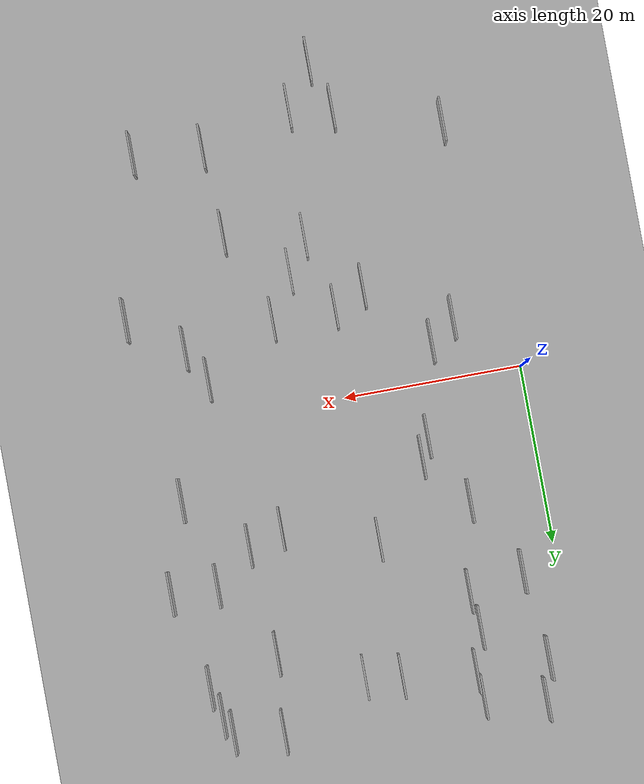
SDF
<?xml version="1.0" encoding="utf-8"?>

<sdf version="1.6">

   <world name="default">

      <gui fullscreen="0">

         <camera name="user_camera">

            <pose>-15 0 4.57585 0 0 0</pose>

            <view_controller>orbit</view_controller>

         </camera>

      </gui>

      <scene>

         <sky>

           <clouds>

             <speed>12</speed>

           </clouds>

         </sky>

         <ambient>0.4 0.4 0.4 1</ambient>

         <background>0.7 0.7 0.7 1</background>

         <shadows>1</shadows>

      </scene>

      <gravity>0 0 -9.8066</gravity>

      <magnetic_field>6e-06 2.3e-05 -4.2e-05</magnetic_field>

      <physics default="0" name="default_physics" type="ode">

         <ode>

            <solver>

               <type>quick</type>

               <iters>10</iters>

               <sor>1.0</sor>

               <use_dynamic_moi_rescaling>0</use_dynamic_moi_rescaling>

            </solver>

            <constraints>

               <cfm>0</cfm>

               <erp>0.2</erp>

               <contact_max_correcting_vel>100</contact_max_correcting_vel>

               <contact_surface_layer>0.001</contact_surface_layer>

            </constraints>

         </ode>

         <max_step_size>0.004</max_step_size>

         <real_time_factor>1</real_time_factor>

         <real_time_update_rate>250</real_time_update_rate>

      </physics>

      <light name="sun" type="directional">

         <cast_shadows>1</cast_shadows>

         <pose>0 0 10 0 0 0</pose>

         <diffuse>0.8 0.8 0.8 1</diffuse>

         <specular>0.2 0.2 0.2 1</specular>

         <attenuation>

            <range>1000</range>

            <constant>0.9</constant>

            <linear>0.01</linear>

            <quadratic>0.001</quadratic>

         </attenuation>

         <direction>-0.5 0.1 -0.9</direction>

      </light>

      <include>

         <name>ground_plane_1</name>

         <uri>model://HANNAS_ground_plane</uri>

         <pose>0 0 0  0 0 0</pose>

      </include>

      <include>

         <name>ground_plane_2</name>

         <uri>model://HANNAS_ground_plane</uri>

         <pose>100 0 0  0 0 0</pose>

      </include>

      <model name="HANNAS_wall_1">

         <static>1</static>

         <pose frame="">3.0240 32.3382 2.5 0.000000 0.000000 1.570796</pose>

         <link name="link">

            <pose frame="">0 0 2.50 0 0 0</pose>

            <collision name="collision">

               <geometry>

                  <box>

                     <size>5.00 0.2 5.00</size>

                  </box>

               </geometry>

               <max_contacts>10</max_contacts>

               <surface>

                  <contact>

                     <ode/>

                  </contact>

                  <bounce/>

                  <friction>

                     <torsional>

                        <ode/>

                     </torsional>

                     <ode/>

                  </friction>

               </surface>

            </collision>

            <visual name="visual">

               <cast_shadows>0</cast_shadows>

               <geometry>

                  <box>

                     <size>5.00 0.2 5.00</size>

                  </box>

               </geometry>

               <material>

                  <script>

                     <uri>model://HANNAS_wall/materials/scripts</uri>

                     <uri>model://HANNAS_wall/materials/textures</uri>

                     <name>vrc/HANNAS_wall</name>

                  </script>

               </material>

            </visual>

            <self_collide>0</self_collide>

            <enable_wind>0</enable_wind>

            <kinematic>0</kinematic>

         </link>

      </model>

      <model name="HANNAS_wall_2">

         <static>1</static>

         <pose frame="">9.8291 27.6861 2.5 0.000000 0.000000 1.570796</pose>

         <link name="link">

            <pose frame="">0 0 2.50 0 0 0</pose>

            <collision name="collision">

               <geometry>

                  <box>

                     <size>5.00 0.2 5.00</size>

                  </box>

               </geometry>

               <max_contacts>10</max_contacts>

               <surface>

                  <contact>

                     <ode/>

                  </contact>

                  <bounce/>

                  <friction>

                     <torsional>

                        <ode/>

                     </torsional>

                     <ode/>

                  </friction>

               </surface>

            </collision>

            <visual name="visual">

               <cast_shadows>0</cast_shadows>

               <geometry>

                  <box>

                     <size>5.00 0.2 5.00</size>

                  </box>

               </geometry>

               <material>

                  <script>

                     <uri>model://HANNAS_wall/materials/scripts</uri>

                     <uri>model://HANNAS_wall/materials/textures</uri>

                     <name>vrc/HANNAS_wall</name>

                  </script>

               </material>

            </visual>

            <self_collide>0</self_collide>

            <enable_wind>0</enable_wind>

            <kinematic>0</kinematic>

         </link>

      </model>

      <model name="HANNAS_wall_3">

         <static>1</static>

         <pose frame="">23.4976 -14.7155 2.5 0.000000 0.000000 1.570796</pose>

         <link name="link">

            <pose frame="">0 0 2.50 0 0 0</pose>

            <collision name="collision">

               <geometry>

                  <box>

                     <size>5.00 0.2 5.00</size>

                  </box>

               </geometry>

               <max_contacts>10</max_contacts>

               <surface>

                  <contact>

                     <ode/>

                  </contact>

                  <bounce/>

                  <friction>

                     <torsional>

                        <ode/>

                     </torsional>

                     <ode/>

                  </friction>

               </surface>

            </collision>

            <visual name="visual">

               <cast_shadows>0</cast_shadows>

               <geometry>

                  <box>

                     <size>5.00 0.2 5.00</size>

                  </box>

               </geometry>

               <material>

                  <script>

                     <uri>model://HANNAS_wall/materials/scripts</uri>

                     <uri>model://HANNAS_wall/materials/textures</uri>

                     <name>vrc/HANNAS_wall</name>

                  </script>

               </material>

            </visual>

            <self_collide>0</self_collide>

            <enable_wind>0</enable_wind>

            <kinematic>0</kinematic>

         </link>

      </model>

      <model name="HANNAS_wall_4">

         <static>1</static>

         <pose frame="">8.4469 13.7940 2.5 0.000000 0.000000 1.570796</pose>

         <link name="link">

            <pose frame="">0 0 2.50 0 0 0</pose>

            <collision name="collision">

               <geometry>

                  <box>

                     <size>5.00 0.2 5.00</size>

                  </box>

               </geometry>

               <max_contacts>10</max_contacts>

               <surface>

                  <contact>

                     <ode/>

                  </contact>

                  <bounce/>

                  <friction>

                     <torsional>

                        <ode/>

                     </torsional>

                     <ode/>

                  </friction>

               </surface>

            </collision>

            <visual name="visual">

               <cast_shadows>0</cast_shadows>

               <geometry>

                  <box>

                     <size>5.00 0.2 5.00</size>

                  </box>

               </geometry>

               <material>

                  <script>

                     <uri>model://HANNAS_wall/materials/scripts</uri>

                     <uri>model://HANNAS_wall/materials/textures</uri>

                     <name>vrc/HANNAS_wall</name>

                  </script>

               </material>

            </visual>

            <self_collide>0</self_collide>

            <enable_wind>0</enable_wind>

            <kinematic>0</kinematic>

         </link>

      </model>

      <model name="HANNAS_wall_5">

         <static>1</static>

         <pose frame="">42.3496 -12.6047 2.5 0.000000 0.000000 1.570796</pose>

         <link name="link">

            <pose frame="">0 0 2.50 0 0 0</pose>

            <collision name="collision">

               <geometry>

                  <box>

                     <size>5.00 0.2 5.00</size>

                  </box>

               </geometry>

               <max_contacts>10</max_contacts>

               <surface>

                  <contact>

                     <ode/>

                  </contact>

                  <bounce/>

                  <friction>

                     <torsional>

                        <ode/>

                     </torsional>

                     <ode/>

                  </friction>

               </surface>

            </collision>

            <visual name="visual">

               <cast_shadows>0</cast_shadows>

               <geometry>

                  <box>

                     <size>5.00 0.2 5.00</size>

                  </box>

               </geometry>

               <material>

                  <script>

                     <uri>model://HANNAS_wall/materials/scripts</uri>

                     <uri>model://HANNAS_wall/materials/textures</uri>

                     <name>vrc/HANNAS_wall</name>

                  </script>

               </material>

            </visual>

            <self_collide>0</self_collide>

            <enable_wind>0</enable_wind>

            <kinematic>0</kinematic>

         </link>

      </model>

      <model name="HANNAS_wall_6">

         <static>1</static>

         <pose frame="">11.7764 5.9705 2.5 0.000000 0.000000 1.570796</pose>

         <link name="link">

            <pose frame="">0 0 2.50 0 0 0</pose>

            <collision name="collision">

               <geometry>

                  <box>

                     <size>5.00 0.2 5.00</size>

                  </box>

               </geometry>

               <max_contacts>10</max_contacts>

               <surface>

                  <contact>

                     <ode/>

                  </contact>

                  <bounce/>

                  <friction>

                     <torsional>

                        <ode/>

                     </torsional>

                     <ode/>

                  </friction>

               </surface>

            </collision>

            <visual name="visual">

               <cast_shadows>0</cast_shadows>

               <geometry>

                  <box>

                     <size>5.00 0.2 5.00</size>

                  </box>

               </geometry>

               <material>

                  <script>

                     <uri>model://HANNAS_wall/materials/scripts</uri>

                     <uri>model://HANNAS_wall/materials/textures</uri>

                     <name>vrc/HANNAS_wall</name>

                  </script>

               </material>

            </visual>

            <self_collide>0</self_collide>

            <enable_wind>0</enable_wind>

            <kinematic>0</kinematic>

         </link>

      </model>

      <model name="HANNAS_wall_7">

         <static>1</static>

         <pose frame="">26.3177 -9.8103 2.5 0.000000 0.000000 1.570796</pose>

         <link name="link">

            <pose frame="">0 0 2.50 0 0 0</pose>

            <collision name="collision">

               <geometry>

                  <box>

                     <size>5.00 0.2 5.00</size>

                  </box>

               </geometry>

               <max_contacts>10</max_contacts>

               <surface>

                  <contact>

                     <ode/>

                  </contact>

                  <bounce/>

                  <friction>

                     <torsional>

                        <ode/>

                     </torsional>

                     <ode/>

                  </friction>

               </surface>

            </collision>

            <visual name="visual">

               <cast_shadows>0</cast_shadows>

               <geometry>

                  <box>

                     <size>5.00 0.2 5.00</size>

                  </box>

               </geometry>

               <material>

                  <script>

                     <uri>model://HANNAS_wall/materials/scripts</uri>

                     <uri>model://HANNAS_wall/materials/textures</uri>

                     <name>vrc/HANNAS_wall</name>

                  </script>

               </material>

            </visual>

            <self_collide>0</self_collide>

            <enable_wind>0</enable_wind>

            <kinematic>0</kinematic>

         </link>

      </model>

      <model name="HANNAS_wall_8">

         <static>1</static>

         <pose frame="">6.7058 -6.4565 2.5 0.000000 0.000000 1.570796</pose>

         <link name="link">

            <pose frame="">0 0 2.50 0 0 0</pose>

            <collision name="collision">

               <geometry>

                  <box>

                     <size>5.00 0.2 5.00</size>

                  </box>

               </geometry>

               <max_contacts>10</max_contacts>

               <surface>

                  <contact>

                     <ode/>

                  </contact>

                  <bounce/>

                  <friction>

                     <torsional>

                        <ode/>

                     </torsional>

                     <ode/>

                  </friction>

               </surface>

            </collision>

            <visual name="visual">

               <cast_shadows>0</cast_shadows>

               <geometry>

                  <box>

                     <size>5.00 0.2 5.00</size>

                  </box>

               </geometry>

               <material>

                  <script>

                     <uri>model://HANNAS_wall/materials/scripts</uri>

                     <uri>model://HANNAS_wall/materials/textures</uri>

                     <name>vrc/HANNAS_wall</name>

                  </script>

               </material>

            </visual>

            <self_collide>0</self_collide>

            <enable_wind>0</enable_wind>

            <kinematic>0</kinematic>

         </link>

      </model>

      <model name="HANNAS_wall_9">

         <static>1</static>

         <pose frame="">30.5753 -29.9207 2.5 0.000000 0.000000 1.570796</pose>

         <link name="link">

            <pose frame="">0 0 2.50 0 0 0</pose>

            <collision name="collision">

               <geometry>

                  <box>

                     <size>5.00 0.2 5.00</size>

                  </box>

               </geometry>

               <max_contacts>10</max_contacts>

               <surface>

                  <contact>

                     <ode/>

                  </contact>

                  <bounce/>

                  <friction>

                     <torsional>

                        <ode/>

                     </torsional>

                     <ode/>

                  </friction>

               </surface>

            </collision>

            <visual name="visual">

               <cast_shadows>0</cast_shadows>

               <geometry>

                  <box>

                     <size>5.00 0.2 5.00</size>

                  </box>

               </geometry>

               <material>

                  <script>

                     <uri>model://HANNAS_wall/materials/scripts</uri>

                     <uri>model://HANNAS_wall/materials/textures</uri>

                     <name>vrc/HANNAS_wall</name>

                  </script>

               </material>

            </visual>

            <self_collide>0</self_collide>

            <enable_wind>0</enable_wind>

            <kinematic>0</kinematic>

         </link>

      </model>

      <model name="HANNAS_wall_10">

         <static>1</static>

         <pose frame="">32.3919 26.5118 2.5 0.000000 0.000000 1.570796</pose>

         <link name="link">

            <pose frame="">0 0 2.50 0 0 0</pose>

            <collision name="collision">

               <geometry>

                  <box>

                     <size>5.00 0.2 5.00</size>

                  </box>

               </geometry>

               <max_contacts>10</max_contacts>

               <surface>

                  <contact>

                     <ode/>

                  </contact>

                  <bounce/>

                  <friction>

                     <torsional>

                        <ode/>

                     </torsional>

                     <ode/>

                  </friction>

               </surface>

            </collision>

            <visual name="visual">

               <cast_shadows>0</cast_shadows>

               <geometry>

                  <box>

                     <size>5.00 0.2 5.00</size>

                  </box>

               </geometry>

               <material>

                  <script>

                     <uri>model://HANNAS_wall/materials/scripts</uri>

                     <uri>model://HANNAS_wall/materials/textures</uri>

                     <name>vrc/HANNAS_wall</name>

                  </script>

               </material>

            </visual>

            <self_collide>0</self_collide>

            <enable_wind>0</enable_wind>

            <kinematic>0</kinematic>

         </link>

      </model>

      <model name="HANNAS_wall_11">

         <static>1</static>

         <pose frame="">39.7655 8.0838 2.5 0.000000 0.000000 1.570796</pose>

         <link name="link">

            <pose frame="">0 0 2.50 0 0 0</pose>

            <collision name="collision">

               <geometry>

                  <box>

                     <size>5.00 0.2 5.00</size>

                  </box>

               </geometry>

               <max_contacts>10</max_contacts>

               <surface>

                  <contact>

                     <ode/>

                  </contact>

                  <bounce/>

                  <friction>

                     <torsional>

                        <ode/>

                     </torsional>

                     <ode/>

                  </friction>

               </surface>

            </collision>

            <visual name="visual">

               <cast_shadows>0</cast_shadows>

               <geometry>

                  <box>

                     <size>5.00 0.2 5.00</size>

                  </box>

               </geometry>

               <material>

                  <script>

                     <uri>model://HANNAS_wall/materials/scripts</uri>

                     <uri>model://HANNAS_wall/materials/textures</uri>

                     <name>vrc/HANNAS_wall</name>

                  </script>

               </material>

            </visual>

            <self_collide>0</self_collide>

            <enable_wind>0</enable_wind>

            <kinematic>0</kinematic>

         </link>

      </model>

      <model name="HANNAS_wall_12">

         <static>1</static>

         <pose frame="">37.5362 18.0105 2.5 0.000000 0.000000 1.570796</pose>

         <link name="link">

            <pose frame="">0 0 2.50 0 0 0</pose>

            <collision name="collision">

               <geometry>

                  <box>

                     <size>5.00 0.2 5.00</size>

                  </box>

               </geometry>

               <max_contacts>10</max_contacts>

               <surface>

                  <contact>

                     <ode/>

                  </contact>

                  <bounce/>

                  <friction>

                     <torsional>

                        <ode/>

                     </torsional>

                     <ode/>

                  </friction>

               </surface>

            </collision>

            <visual name="visual">

               <cast_shadows>0</cast_shadows>

               <geometry>

                  <box>

                     <size>5.00 0.2 5.00</size>

                  </box>

               </geometry>

               <material>

                  <script>

                     <uri>model://HANNAS_wall/materials/scripts</uri>

                     <uri>model://HANNAS_wall/materials/textures</uri>

                     <name>vrc/HANNAS_wall</name>

                  </script>

               </material>

            </visual>

            <self_collide>0</self_collide>

            <enable_wind>0</enable_wind>

            <kinematic>0</kinematic>

         </link>

      </model>

      <model name="HANNAS_wall_13">

         <static>1</static>

         <pose frame="">33.1508 35.0678 2.5 0.000000 0.000000 1.570796</pose>

         <link name="link">

            <pose frame="">0 0 2.50 0 0 0</pose>

            <collision name="collision">

               <geometry>

                  <box>

                     <size>5.00 0.2 5.00</size>

                  </box>

               </geometry>

               <max_contacts>10</max_contacts>

               <surface>

                  <contact>

                     <ode/>

                  </contact>

                  <bounce/>

                  <friction>

                     <torsional>

                        <ode/>

                     </torsional>

                     <ode/>

                  </friction>

               </surface>

            </collision>

            <visual name="visual">

               <cast_shadows>0</cast_shadows>

               <geometry>

                  <box>

                     <size>5.00 0.2 5.00</size>

                  </box>

               </geometry>

               <material>

                  <script>

                     <uri>model://HANNAS_wall/materials/scripts</uri>

                     <uri>model://HANNAS_wall/materials/textures</uri>

                     <name>vrc/HANNAS_wall</name>

                  </script>

               </material>

            </visual>

            <self_collide>0</self_collide>

            <enable_wind>0</enable_wind>

            <kinematic>0</kinematic>

         </link>

      </model>

      <model name="HANNAS_wall_14">

         <static>1</static>

         <pose frame="">11.1212 32.3318 2.5 0.000000 0.000000 1.570796</pose>

         <link name="link">

            <pose frame="">0 0 2.50 0 0 0</pose>

            <collision name="collision">

               <geometry>

                  <box>

                     <size>5.00 0.2 5.00</size>

                  </box>

               </geometry>

               <max_contacts>10</max_contacts>

               <surface>

                  <contact>

                     <ode/>

                  </contact>

                  <bounce/>

                  <friction>

                     <torsional>

                        <ode/>

                     </torsional>

                     <ode/>

                  </friction>

               </surface>

            </collision>

            <visual name="visual">

               <cast_shadows>0</cast_shadows>

               <geometry>

                  <box>

                     <size>5.00 0.2 5.00</size>

                  </box>

               </geometry>

               <material>

                  <script>

                     <uri>model://HANNAS_wall/materials/scripts</uri>

                     <uri>model://HANNAS_wall/materials/textures</uri>

                     <name>vrc/HANNAS_wall</name>

                  </script>

               </material>

            </visual>

            <self_collide>0</self_collide>

            <enable_wind>0</enable_wind>

            <kinematic>0</kinematic>

         </link>

      </model>

      <model name="HANNAS_wall_15">

         <static>1</static>

         <pose frame="">42.7084 17.9801 2.5 0.000000 0.000000 1.570796</pose>

         <link name="link">

            <pose frame="">0 0 2.50 0 0 0</pose>

            <collision name="collision">

               <geometry>

                  <box>

                     <size>5.00 0.2 5.00</size>

                  </box>

               </geometry>

               <max_contacts>10</max_contacts>

               <surface>

                  <contact>

                     <ode/>

                  </contact>

                  <bounce/>

                  <friction>

                     <torsional>

                        <ode/>

                     </torsional>

                     <ode/>

                  </friction>

               </surface>

            </collision>

            <visual name="visual">

               <cast_shadows>0</cast_shadows>

               <geometry>

                  <box>

                     <size>5.00 0.2 5.00</size>

                  </box>

               </geometry>

               <material>

                  <script>

                     <uri>model://HANNAS_wall/materials/scripts</uri>

                     <uri>model://HANNAS_wall/materials/textures</uri>

                     <name>vrc/HANNAS_wall</name>

                  </script>

               </material>

            </visual>

            <self_collide>0</self_collide>

            <enable_wind>0</enable_wind>

            <kinematic>0</kinematic>

         </link>

      </model>

      <model name="HANNAS_wall_16">

         <static>1</static>

         <pose frame="">19.0860 16.1743 2.5 0.000000 0.000000 1.570796</pose>

         <link name="link">

            <pose frame="">0 0 2.50 0 0 0</pose>

            <collision name="collision">

               <geometry>

                  <box>

                     <size>5.00 0.2 5.00</size>

                  </box>

               </geometry>

               <max_contacts>10</max_contacts>

               <surface>

                  <contact>

                     <ode/>

                  </contact>

                  <bounce/>

                  <friction>

                     <torsional>

                        <ode/>

                     </torsional>

                     <ode/>

                  </friction>

               </surface>

            </collision>

            <visual name="visual">

               <cast_shadows>0</cast_shadows>

               <geometry>

                  <box>

                     <size>5.00 0.2 5.00</size>

                  </box>

               </geometry>

               <material>

                  <script>

                     <uri>model://HANNAS_wall/materials/scripts</uri>

                     <uri>model://HANNAS_wall/materials/textures</uri>

                     <name>vrc/HANNAS_wall</name>

                  </script>

               </material>

            </visual>

            <self_collide>0</self_collide>

            <enable_wind>0</enable_wind>

            <kinematic>0</kinematic>

         </link>

      </model>

      <model name="HANNAS_wall_17">

         <static>1</static>

         <pose frame="">10.8836 35.2054 2.5 0.000000 0.000000 1.570796</pose>

         <link name="link">

            <pose frame="">0 0 2.50 0 0 0</pose>

            <collision name="collision">

               <geometry>

                  <box>

                     <size>5.00 0.2 5.00</size>

                  </box>

               </geometry>

               <max_contacts>10</max_contacts>

               <surface>

                  <contact>

                     <ode/>

                  </contact>

                  <bounce/>

                  <friction>

                     <torsional>

                        <ode/>

                     </torsional>

                     <ode/>

                  </friction>

               </surface>

            </collision>

            <visual name="visual">

               <cast_shadows>0</cast_shadows>

               <geometry>

                  <box>

                     <size>5.00 0.2 5.00</size>

                  </box>

               </geometry>

               <material>

                  <script>

                     <uri>model://HANNAS_wall/materials/scripts</uri>

                     <uri>model://HANNAS_wall/materials/textures</uri>

                     <name>vrc/HANNAS_wall</name>

                  </script>

               </material>

            </visual>

            <self_collide>0</self_collide>

            <enable_wind>0</enable_wind>

            <kinematic>0</kinematic>

         </link>

      </model>

      <model name="HANNAS_wall_18">

         <static>1</static>

         <pose frame="">12.7878 8.1145 2.5 0.000000 0.000000 1.570796</pose>

         <link name="link">

            <pose frame="">0 0 2.50 0 0 0</pose>

            <collision name="collision">

               <geometry>

                  <box>

                     <size>5.00 0.2 5.00</size>

                  </box>

               </geometry>

               <max_contacts>10</max_contacts>

               <surface>

                  <contact>

                     <ode/>

                  </contact>

                  <bounce/>

                  <friction>

                     <torsional>

                        <ode/>

                     </torsional>

                     <ode/>

                  </friction>

               </surface>

            </collision>

            <visual name="visual">

               <cast_shadows>0</cast_shadows>

               <geometry>

                  <box>

                     <size>5.00 0.2 5.00</size>

                  </box>

               </geometry>

               <material>

                  <script>

                     <uri>model://HANNAS_wall/materials/scripts</uri>

                     <uri>model://HANNAS_wall/materials/textures</uri>

                     <name>vrc/HANNAS_wall</name>

                  </script>

               </material>

            </visual>

            <self_collide>0</self_collide>

            <enable_wind>0</enable_wind>

            <kinematic>0</kinematic>

         </link>

      </model>

      <model name="HANNAS_wall_19">

         <static>1</static>

         <pose frame="">4.1450 22.4638 2.5 0.000000 0.000000 1.570796</pose>

         <link name="link">

            <pose frame="">0 0 2.50 0 0 0</pose>

            <collision name="collision">

               <geometry>

                  <box>

                     <size>5.00 0.2 5.00</size>

                  </box>

               </geometry>

               <max_contacts>10</max_contacts>

               <surface>

                  <contact>

                     <ode/>

                  </contact>

                  <bounce/>

                  <friction>

                     <torsional>

                        <ode/>

                     </torsional>

                     <ode/>

                  </friction>

               </surface>

            </collision>

            <visual name="visual">

               <cast_shadows>0</cast_shadows>

               <geometry>

                  <box>

                     <size>5.00 0.2 5.00</size>

                  </box>

               </geometry>

               <material>

                  <script>

                     <uri>model://HANNAS_wall/materials/scripts</uri>

                     <uri>model://HANNAS_wall/materials/textures</uri>

                     <name>vrc/HANNAS_wall</name>

                  </script>

               </material>

            </visual>

            <self_collide>0</self_collide>

            <enable_wind>0</enable_wind>

            <kinematic>0</kinematic>

         </link>

      </model>

      <model name="HANNAS_wall_20">

         <static>1</static>

         <pose frame="">15.8582 -11.6536 2.5 0.000000 0.000000 1.570796</pose>

         <link name="link">

            <pose frame="">0 0 2.50 0 0 0</pose>

            <collision name="collision">

               <geometry>

                  <box>

                     <size>5.00 0.2 5.00</size>

                  </box>

               </geometry>

               <max_contacts>10</max_contacts>

               <surface>

                  <contact>

                     <ode/>

                  </contact>

                  <bounce/>

                  <friction>

                     <torsional>

                        <ode/>

                     </torsional>

                     <ode/>

                  </friction>

               </surface>

            </collision>

            <visual name="visual">

               <cast_shadows>0</cast_shadows>

               <geometry>

                  <box>

                     <size>5.00 0.2 5.00</size>

                  </box>

               </geometry>

               <material>

                  <script>

                     <uri>model://HANNAS_wall/materials/scripts</uri>

                     <uri>model://HANNAS_wall/materials/textures</uri>

                     <name>vrc/HANNAS_wall</name>

                  </script>

               </material>

            </visual>

            <self_collide>0</self_collide>

            <enable_wind>0</enable_wind>

            <kinematic>0</kinematic>

         </link>

      </model>

      <model name="HANNAS_wall_21">

         <static>1</static>

         <pose frame="">9.4870 -4.2810 2.5 0.000000 0.000000 1.570796</pose>

         <link name="link">

            <pose frame="">0 0 2.50 0 0 0</pose>

            <collision name="collision">

               <geometry>

                  <box>

                     <size>5.00 0.2 5.00</size>

                  </box>

               </geometry>

               <max_contacts>10</max_contacts>

               <surface>

                  <contact>

                     <ode/>

                  </contact>

                  <bounce/>

                  <friction>

                     <torsional>

                        <ode/>

                     </torsional>

                     <ode/>

                  </friction>

               </surface>

            </collision>

            <visual name="visual">

               <cast_shadows>0</cast_shadows>

               <geometry>

                  <box>

                     <size>5.00 0.2 5.00</size>

                  </box>

               </geometry>

               <material>

                  <script>

                     <uri>model://HANNAS_wall/materials/scripts</uri>

                     <uri>model://HANNAS_wall/materials/textures</uri>

                     <name>vrc/HANNAS_wall</name>

                  </script>

               </material>

            </visual>

            <self_collide>0</self_collide>

            <enable_wind>0</enable_wind>

            <kinematic>0</kinematic>

         </link>

      </model>

      <model name="HANNAS_wall_22">

         <static>1</static>

         <pose frame="">39.5020 32.1715 2.5 0.000000 0.000000 1.570796</pose>

         <link name="link">

            <pose frame="">0 0 2.50 0 0 0</pose>

            <collision name="collision">

               <geometry>

                  <box>

                     <size>5.00 0.2 5.00</size>

                  </box>

               </geometry>

               <max_contacts>10</max_contacts>

               <surface>

                  <contact>

                     <ode/>

                  </contact>

                  <bounce/>

                  <friction>

                     <torsional>

                        <ode/>

                     </torsional>

                     <ode/>

                  </friction>

               </surface>

            </collision>

            <visual name="visual">

               <cast_shadows>0</cast_shadows>

               <geometry>

                  <box>

                     <size>5.00 0.2 5.00</size>

                  </box>

               </geometry>

               <material>

                  <script>

                     <uri>model://HANNAS_wall/materials/scripts</uri>

                     <uri>model://HANNAS_wall/materials/textures</uri>

                     <name>vrc/HANNAS_wall</name>

                  </script>

               </material>

            </visual>

            <self_collide>0</self_collide>

            <enable_wind>0</enable_wind>

            <kinematic>0</kinematic>

         </link>

      </model>

      <model name="HANNAS_wall_23">

         <static>1</static>

         <pose frame="">21.2196 -18.2539 2.5 0.000000 0.000000 1.570796</pose>

         <link name="link">

            <pose frame="">0 0 2.50 0 0 0</pose>

            <collision name="collision">

               <geometry>

                  <box>

                     <size>5.00 0.2 5.00</size>

                  </box>

               </geometry>

               <max_contacts>10</max_contacts>

               <surface>

                  <contact>

                     <ode/>

                  </contact>

                  <bounce/>

                  <friction>

                     <torsional>

                        <ode/>

                     </torsional>

                     <ode/>

                  </friction>

               </surface>

            </collision>

            <visual name="visual">

               <cast_shadows>0</cast_shadows>

               <geometry>

                  <box>

                     <size>5.00 0.2 5.00</size>

                  </box>

               </geometry>

               <material>

                  <script>

                     <uri>model://HANNAS_wall/materials/scripts</uri>

                     <uri>model://HANNAS_wall/materials/textures</uri>

                     <name>vrc/HANNAS_wall</name>

                  </script>

               </material>

            </visual>

            <self_collide>0</self_collide>

            <enable_wind>0</enable_wind>

            <kinematic>0</kinematic>

         </link>

      </model>

      <model name="HANNAS_wall_24">

         <static>1</static>

         <pose frame="">33.3177 14.2906 2.5 0.000000 0.000000 1.570796</pose>

         <link name="link">

            <pose frame="">0 0 2.50 0 0 0</pose>

            <collision name="collision">

               <geometry>

                  <box>

                     <size>5.00 0.2 5.00</size>

                  </box>

               </geometry>

               <max_contacts>10</max_contacts>

               <surface>

                  <contact>

                     <ode/>

                  </contact>

                  <bounce/>

                  <friction>

                     <torsional>

                        <ode/>

                     </torsional>

                     <ode/>

                  </friction>

               </surface>

            </collision>

            <visual name="visual">

               <cast_shadows>0</cast_shadows>

               <geometry>

                  <box>

                     <size>5.00 0.2 5.00</size>

                  </box>

               </geometry>

               <material>

                  <script>

                     <uri>model://HANNAS_wall/materials/scripts</uri>

                     <uri>model://HANNAS_wall/materials/textures</uri>

                     <name>vrc/HANNAS_wall</name>

                  </script>

               </material>

            </visual>

            <self_collide>0</self_collide>

            <enable_wind>0</enable_wind>

            <kinematic>0</kinematic>

         </link>

      </model>

      <model name="HANNAS_wall_25">

         <static>1</static>

         <pose frame="">36.4399 -8.3549 2.5 0.000000 0.000000 1.570796</pose>

         <link name="link">

            <pose frame="">0 0 2.50 0 0 0</pose>

            <collision name="collision">

               <geometry>

                  <box>

                     <size>5.00 0.2 5.00</size>

                  </box>

               </geometry>

               <max_contacts>10</max_contacts>

               <surface>

                  <contact>

                     <ode/>

                  </contact>

                  <bounce/>

                  <friction>

                     <torsional>

                        <ode/>

                     </torsional>

                     <ode/>

                  </friction>

               </surface>

            </collision>

            <visual name="visual">

               <cast_shadows>0</cast_shadows>

               <geometry>

                  <box>

                     <size>5.00 0.2 5.00</size>

                  </box>

               </geometry>

               <material>

                  <script>

                     <uri>model://HANNAS_wall/materials/scripts</uri>

                     <uri>model://HANNAS_wall/materials/textures</uri>

                     <name>vrc/HANNAS_wall</name>

                  </script>

               </material>

            </visual>

            <self_collide>0</self_collide>

            <enable_wind>0</enable_wind>

            <kinematic>0</kinematic>

         </link>

      </model>

      <model name="HANNAS_wall_26">

         <static>1</static>

         <pose frame="">4.0799 36.7621 2.5 0.000000 0.000000 1.570796</pose>

         <link name="link">

            <pose frame="">0 0 2.50 0 0 0</pose>

            <collision name="collision">

               <geometry>

                  <box>

                     <size>5.00 0.2 5.00</size>

                  </box>

               </geometry>

               <max_contacts>10</max_contacts>

               <surface>

                  <contact>

                     <ode/>

                  </contact>

                  <bounce/>

                  <friction>

                     <torsional>

                        <ode/>

                     </torsional>

                     <ode/>

                  </friction>

               </surface>

            </collision>

            <visual name="visual">

               <cast_shadows>0</cast_shadows>

               <geometry>

                  <box>

                     <size>5.00 0.2 5.00</size>

                  </box>

               </geometry>

               <material>

                  <script>

                     <uri>model://HANNAS_wall/materials/scripts</uri>

                     <uri>model://HANNAS_wall/materials/textures</uri>

                     <name>vrc/HANNAS_wall</name>

                  </script>

               </material>

            </visual>

            <self_collide>0</self_collide>

            <enable_wind>0</enable_wind>

            <kinematic>0</kinematic>

         </link>

      </model>

      <model name="HANNAS_wall_27">

         <static>1</static>

         <pose frame="">23.3341 30.7837 2.5 0.000000 0.000000 1.570796</pose>

         <link name="link">

            <pose frame="">0 0 2.50 0 0 0</pose>

            <collision name="collision">

               <geometry>

                  <box>

                     <size>5.00 0.2 5.00</size>

                  </box>

               </geometry>

               <max_contacts>10</max_contacts>

               <surface>

                  <contact>

                     <ode/>

                  </contact>

                  <bounce/>

                  <friction>

                     <torsional>

                        <ode/>

                     </torsional>

                     <ode/>

                  </friction>

               </surface>

            </collision>

            <visual name="visual">

               <cast_shadows>0</cast_shadows>

               <geometry>

                  <box>

                     <size>5.00 0.2 5.00</size>

                  </box>

               </geometry>

               <material>

                  <script>

                     <uri>model://HANNAS_wall/materials/scripts</uri>

                     <uri>model://HANNAS_wall/materials/textures</uri>

                     <name>vrc/HANNAS_wall</name>

                  </script>

               </material>

            </visual>

            <self_collide>0</self_collide>

            <enable_wind>0</enable_wind>

            <kinematic>0</kinematic>

         </link>

      </model>

      <model name="HANNAS_wall_28">

         <static>1</static>

         <pose frame="">40.3029 28.9123 2.5 0.000000 0.000000 1.570796</pose>

         <link name="link">

            <pose frame="">0 0 2.50 0 0 0</pose>

            <collision name="collision">

               <geometry>

                  <box>

                     <size>5.00 0.2 5.00</size>

                  </box>

               </geometry>

               <max_contacts>10</max_contacts>

               <surface>

                  <contact>

                     <ode/>

                  </contact>

                  <bounce/>

                  <friction>

                     <torsional>

                        <ode/>

                     </torsional>

                     <ode/>

                  </friction>

               </surface>

            </collision>

            <visual name="visual">

               <cast_shadows>0</cast_shadows>

               <geometry>

                  <box>

                     <size>5.00 0.2 5.00</size>

                  </box>

               </geometry>

               <material>

                  <script>

                     <uri>model://HANNAS_wall/materials/scripts</uri>

                     <uri>model://HANNAS_wall/materials/textures</uri>

                     <name>vrc/HANNAS_wall</name>

                  </script>

               </material>

            </visual>

            <self_collide>0</self_collide>

            <enable_wind>0</enable_wind>

            <kinematic>0</kinematic>

         </link>

      </model>

      <model name="HANNAS_wall_29">

         <static>1</static>

         <pose frame="">19.2934 -9.9278 2.5 0.000000 0.000000 1.570796</pose>

         <link name="link">

            <pose frame="">0 0 2.50 0 0 0</pose>

            <collision name="collision">

               <geometry>

                  <box>

                     <size>5.00 0.2 5.00</size>

                  </box>

               </geometry>

               <max_contacts>10</max_contacts>

               <surface>

                  <contact>

                     <ode/>

                  </contact>

                  <bounce/>

                  <friction>

                     <torsional>

                        <ode/>

                     </torsional>

                     <ode/>

                  </friction>

               </surface>

            </collision>

            <visual name="visual">

               <cast_shadows>0</cast_shadows>

               <geometry>

                  <box>

                     <size>5.00 0.2 5.00</size>

                  </box>

               </geometry>

               <material>

                  <script>

                     <uri>model://HANNAS_wall/materials/scripts</uri>

                     <uri>model://HANNAS_wall/materials/textures</uri>

                     <name>vrc/HANNAS_wall</name>

                  </script>

               </material>

            </visual>

            <self_collide>0</self_collide>

            <enable_wind>0</enable_wind>

            <kinematic>0</kinematic>

         </link>

      </model>

      <model name="HANNAS_wall_30">

         <static>1</static>

         <pose frame="">29.4686 13.0612 2.5 0.000000 0.000000 1.570796</pose>

         <link name="link">

            <pose frame="">0 0 2.50 0 0 0</pose>

            <collision name="collision">

               <geometry>

                  <box>

                     <size>5.00 0.2 5.00</size>

                  </box>

               </geometry>

               <max_contacts>10</max_contacts>

               <surface>

                  <contact>

                     <ode/>

                  </contact>

                  <bounce/>

                  <friction>

                     <torsional>

                        <ode/>

                     </torsional>

                     <ode/>

                  </friction>

               </surface>

            </collision>

            <visual name="visual">

               <cast_shadows>0</cast_shadows>

               <geometry>

                  <box>

                     <size>5.00 0.2 5.00</size>

                  </box>

               </geometry>

               <material>

                  <script>

                     <uri>model://HANNAS_wall/materials/scripts</uri>

                     <uri>model://HANNAS_wall/materials/textures</uri>

                     <name>vrc/HANNAS_wall</name>

                  </script>

               </material>

            </visual>

            <self_collide>0</self_collide>

            <enable_wind>0</enable_wind>

            <kinematic>0</kinematic>

         </link>

      </model>

      <model name="HANNAS_wall_31">

         <static>1</static>

         <pose frame="">15.6518 -31.7226 2.5 0.000000 0.000000 1.570796</pose>

         <link name="link">

            <pose frame="">0 0 2.50 0 0 0</pose>

            <collision name="collision">

               <geometry>

                  <box>

                     <size>5.00 0.2 5.00</size>

                  </box>

               </geometry>

               <max_contacts>10</max_contacts>

               <surface>

                  <contact>

                     <ode/>

                  </contact>

                  <bounce/>

                  <friction>

                     <torsional>

                        <ode/>

                     </torsional>

                     <ode/>

                  </friction>

               </surface>

            </collision>

            <visual name="visual">

               <cast_shadows>0</cast_shadows>

               <geometry>

                  <box>

                     <size>5.00 0.2 5.00</size>

                  </box>

               </geometry>

               <material>

                  <script>

                     <uri>model://HANNAS_wall/materials/scripts</uri>

                     <uri>model://HANNAS_wall/materials/textures</uri>

                     <name>vrc/HANNAS_wall</name>

                  </script>

               </material>

            </visual>

            <self_collide>0</self_collide>

            <enable_wind>0</enable_wind>

            <kinematic>0</kinematic>

         </link>

      </model>

      <model name="HANNAS_wall_32">

         <static>1</static>

         <pose frame="">3.9060 -28.1129 2.5 0.000000 0.000000 1.570796</pose>

         <link name="link">

            <pose frame="">0 0 2.50 0 0 0</pose>

            <collision name="collision">

               <geometry>

                  <box>

                     <size>5.00 0.2 5.00</size>

                  </box>

               </geometry>

               <max_contacts>10</max_contacts>

               <surface>

                  <contact>

                     <ode/>

                  </contact>

                  <bounce/>

                  <friction>

                     <torsional>

                        <ode/>

                     </torsional>

                     <ode/>

                  </friction>

               </surface>

            </collision>

            <visual name="visual">

               <cast_shadows>0</cast_shadows>

               <geometry>

                  <box>

                     <size>5.00 0.2 5.00</size>

                  </box>

               </geometry>

               <material>

                  <script>

                     <uri>model://HANNAS_wall/materials/scripts</uri>

                     <uri>model://HANNAS_wall/materials/textures</uri>

                     <name>vrc/HANNAS_wall</name>

                  </script>

               </material>

            </visual>

            <self_collide>0</self_collide>

            <enable_wind>0</enable_wind>

            <kinematic>0</kinematic>

         </link>

      </model>

      <model name="HANNAS_wall_33">

         <static>1</static>

         <pose frame="">17.3051 -37.2956 2.5 0.000000 0.000000 1.570796</pose>

         <link name="link">

            <pose frame="">0 0 2.50 0 0 0</pose>

            <collision name="collision">

               <geometry>

                  <box>

                     <size>5.00 0.2 5.00</size>

                  </box>

               </geometry>

               <max_contacts>10</max_contacts>

               <surface>

                  <contact>

                     <ode/>

                  </contact>

                  <bounce/>

                  <friction>

                     <torsional>

                        <ode/>

                     </torsional>

                     <ode/>

                  </friction>

               </surface>

            </collision>

            <visual name="visual">

               <cast_shadows>0</cast_shadows>

               <geometry>

                  <box>

                     <size>5.00 0.2 5.00</size>

                  </box>

               </geometry>

               <material>

                  <script>

                     <uri>model://HANNAS_wall/materials/scripts</uri>

                     <uri>model://HANNAS_wall/materials/textures</uri>

                     <name>vrc/HANNAS_wall</name>

                  </script>

               </material>

            </visual>

            <self_collide>0</self_collide>

            <enable_wind>0</enable_wind>

            <kinematic>0</kinematic>

         </link>

      </model>

      <model name="HANNAS_wall_34">

         <static>1</static>

         <pose frame="">34.5073 -4.5478 2.5 0.000000 0.000000 1.570796</pose>

         <link name="link">

            <pose frame="">0 0 2.50 0 0 0</pose>

            <collision name="collision">

               <geometry>

                  <box>

                     <size>5.00 0.2 5.00</size>

                  </box>

               </geometry>

               <max_contacts>10</max_contacts>

               <surface>

                  <contact>

                     <ode/>

                  </contact>

                  <bounce/>

                  <friction>

                     <torsional>

                        <ode/>

                     </torsional>

                     <ode/>

                  </friction>

               </surface>

            </collision>

            <visual name="visual">

               <cast_shadows>0</cast_shadows>

               <geometry>

                  <box>

                     <size>5.00 0.2 5.00</size>

                  </box>

               </geometry>

               <material>

                  <script>

                     <uri>model://HANNAS_wall/materials/scripts</uri>

                     <uri>model://HANNAS_wall/materials/textures</uri>

                     <name>vrc/HANNAS_wall</name>

                  </script>

               </material>

            </visual>

            <self_collide>0</self_collide>

            <enable_wind>0</enable_wind>

            <kinematic>0</kinematic>

         </link>

      </model>

      <model name="HANNAS_wall_35">

         <static>1</static>

         <pose frame="">20.3863 -32.6083 2.5 0.000000 0.000000 1.570796</pose>

         <link name="link">

            <pose frame="">0 0 2.50 0 0 0</pose>

            <collision name="collision">

               <geometry>

                  <box>

                     <size>5.00 0.2 5.00</size>

                  </box>

               </geometry>

               <max_contacts>10</max_contacts>

               <surface>

                  <contact>

                     <ode/>

                  </contact>

                  <bounce/>

                  <friction>

                     <torsional>

                        <ode/>

                     </torsional>

                     <ode/>

                  </friction>

               </surface>

            </collision>

            <visual name="visual">

               <cast_shadows>0</cast_shadows>

               <geometry>

                  <box>

                     <size>5.00 0.2 5.00</size>

                  </box>

               </geometry>

               <material>

                  <script>

                     <uri>model://HANNAS_wall/materials/scripts</uri>

                     <uri>model://HANNAS_wall/materials/textures</uri>

                     <name>vrc/HANNAS_wall</name>

                  </script>

               </material>

            </visual>

            <self_collide>0</self_collide>

            <enable_wind>0</enable_wind>

            <kinematic>0</kinematic>

         </link>

      </model>

      <model name="HANNAS_wall_36">

         <static>1</static>

         <pose frame="">38.6686 34.1729 2.5 0.000000 0.000000 1.570796</pose>

         <link name="link">

            <pose frame="">0 0 2.50 0 0 0</pose>

            <collision name="collision">

               <geometry>

                  <box>

                     <size>5.00 0.2 5.00</size>

                  </box>

               </geometry>

               <max_contacts>10</max_contacts>

               <surface>

                  <contact>

                     <ode/>

                  </contact>

                  <bounce/>

                  <friction>

                     <torsional>

                        <ode/>

                     </torsional>

                     <ode/>

                  </friction>

               </surface>

            </collision>

            <visual name="visual">

               <cast_shadows>0</cast_shadows>

               <geometry>

                  <box>

                     <size>5.00 0.2 5.00</size>

                  </box>

               </geometry>

               <material>

                  <script>

                     <uri>model://HANNAS_wall/materials/scripts</uri>

                     <uri>model://HANNAS_wall/materials/textures</uri>

                     <name>vrc/HANNAS_wall</name>

                  </script>

               </material>

            </visual>

            <self_collide>0</self_collide>

            <enable_wind>0</enable_wind>

            <kinematic>0</kinematic>

         </link>

      </model>

      <model name="HANNAS_wall_37">

         <static>1</static>

         <pose frame="">38.3783 -30.5924 2.5 0.000000 0.000000 1.570796</pose>

         <link name="link">

            <pose frame="">0 0 2.50 0 0 0</pose>

            <collision name="collision">

               <geometry>

                  <box>

                     <size>5.00 0.2 5.00</size>

                  </box>

               </geometry>

               <max_contacts>10</max_contacts>

               <surface>

                  <contact>

                     <ode/>

                  </contact>

                  <bounce/>

                  <friction>

                     <torsional>

                        <ode/>

                     </torsional>

                     <ode/>

                  </friction>

               </surface>

            </collision>

            <visual name="visual">

               <cast_shadows>0</cast_shadows>

               <geometry>

                  <box>

                     <size>5.00 0.2 5.00</size>

                  </box>

               </geometry>

               <material>

                  <script>

                     <uri>model://HANNAS_wall/materials/scripts</uri>

                     <uri>model://HANNAS_wall/materials/textures</uri>

                     <name>vrc/HANNAS_wall</name>

                  </script>

               </material>

            </visual>

            <self_collide>0</self_collide>

            <enable_wind>0</enable_wind>

            <kinematic>0</kinematic>

         </link>

      </model>

      <model name="HANNAS_wall_38">

         <static>1</static>

         <pose frame="">10.3186 23.5559 2.5 0.000000 0.000000 1.570796</pose>

         <link name="link">

            <pose frame="">0 0 2.50 0 0 0</pose>

            <collision name="collision">

               <geometry>

                  <box>

                     <size>5.00 0.2 5.00</size>

                  </box>

               </geometry>

               <max_contacts>10</max_contacts>

               <surface>

                  <contact>

                     <ode/>

                  </contact>

                  <bounce/>

                  <friction>

                     <torsional>

                        <ode/>

                     </torsional>

                     <ode/>

                  </friction>

               </surface>

            </collision>

            <visual name="visual">

               <cast_shadows>0</cast_shadows>

               <geometry>

                  <box>

                     <size>5.00 0.2 5.00</size>

                  </box>

               </geometry>

               <material>

                  <script>

                     <uri>model://HANNAS_wall/materials/scripts</uri>

                     <uri>model://HANNAS_wall/materials/textures</uri>

                     <name>vrc/HANNAS_wall</name>

                  </script>

               </material>

            </visual>

            <self_collide>0</self_collide>

            <enable_wind>0</enable_wind>

            <kinematic>0</kinematic>

         </link>

      </model>

      <model name="HANNAS_wall_39">

         <static>1</static>

         <pose frame="">19.3062 31.3905 2.5 0.000000 0.000000 1.570796</pose>

         <link name="link">

            <pose frame="">0 0 2.50 0 0 0</pose>

            <collision name="collision">

               <geometry>

                  <box>

                     <size>5.00 0.2 5.00</size>

                  </box>

               </geometry>

               <max_contacts>10</max_contacts>

               <surface>

                  <contact>

                     <ode/>

                  </contact>

                  <bounce/>

                  <friction>

                     <torsional>

                        <ode/>

                     </torsional>

                     <ode/>

                  </friction>

               </surface>

            </collision>

            <visual name="visual">

               <cast_shadows>0</cast_shadows>

               <geometry>

                  <box>

                     <size>5.00 0.2 5.00</size>

                  </box>

               </geometry>

               <material>

                  <script>

                     <uri>model://HANNAS_wall/materials/scripts</uri>

                     <uri>model://HANNAS_wall/materials/textures</uri>

                     <name>vrc/HANNAS_wall</name>

                  </script>

               </material>

            </visual>

            <self_collide>0</self_collide>

            <enable_wind>0</enable_wind>

            <kinematic>0</kinematic>

         </link>

      </model>

      <model name="HANNAS_wall_40">

         <static>1</static>

         <pose frame="">30.0218 -20.2221 2.5 0.000000 0.000000 1.570796</pose>

         <link name="link">

            <pose frame="">0 0 2.50 0 0 0</pose>

            <collision name="collision">

               <geometry>

                  <box>

                     <size>5.00 0.2 5.00</size>

                  </box>

               </geometry>

               <max_contacts>10</max_contacts>

               <surface>

                  <contact>

                     <ode/>

                  </contact>

                  <bounce/>

                  <friction>

                     <torsional>

                        <ode/>

                     </torsional>

                     <ode/>

                  </friction>

               </surface>

            </collision>

            <visual name="visual">

               <cast_shadows>0</cast_shadows>

               <geometry>

                  <box>

                     <size>5.00 0.2 5.00</size>

                  </box>

               </geometry>

               <material>

                  <script>

                     <uri>model://HANNAS_wall/materials/scripts</uri>

                     <uri>model://HANNAS_wall/materials/textures</uri>

                     <name>vrc/HANNAS_wall</name>

                  </script>

               </material>

            </visual>

            <self_collide>0</self_collide>

            <enable_wind>0</enable_wind>

            <kinematic>0</kinematic>

         </link>

      </model>

   </world>

</sdf>
